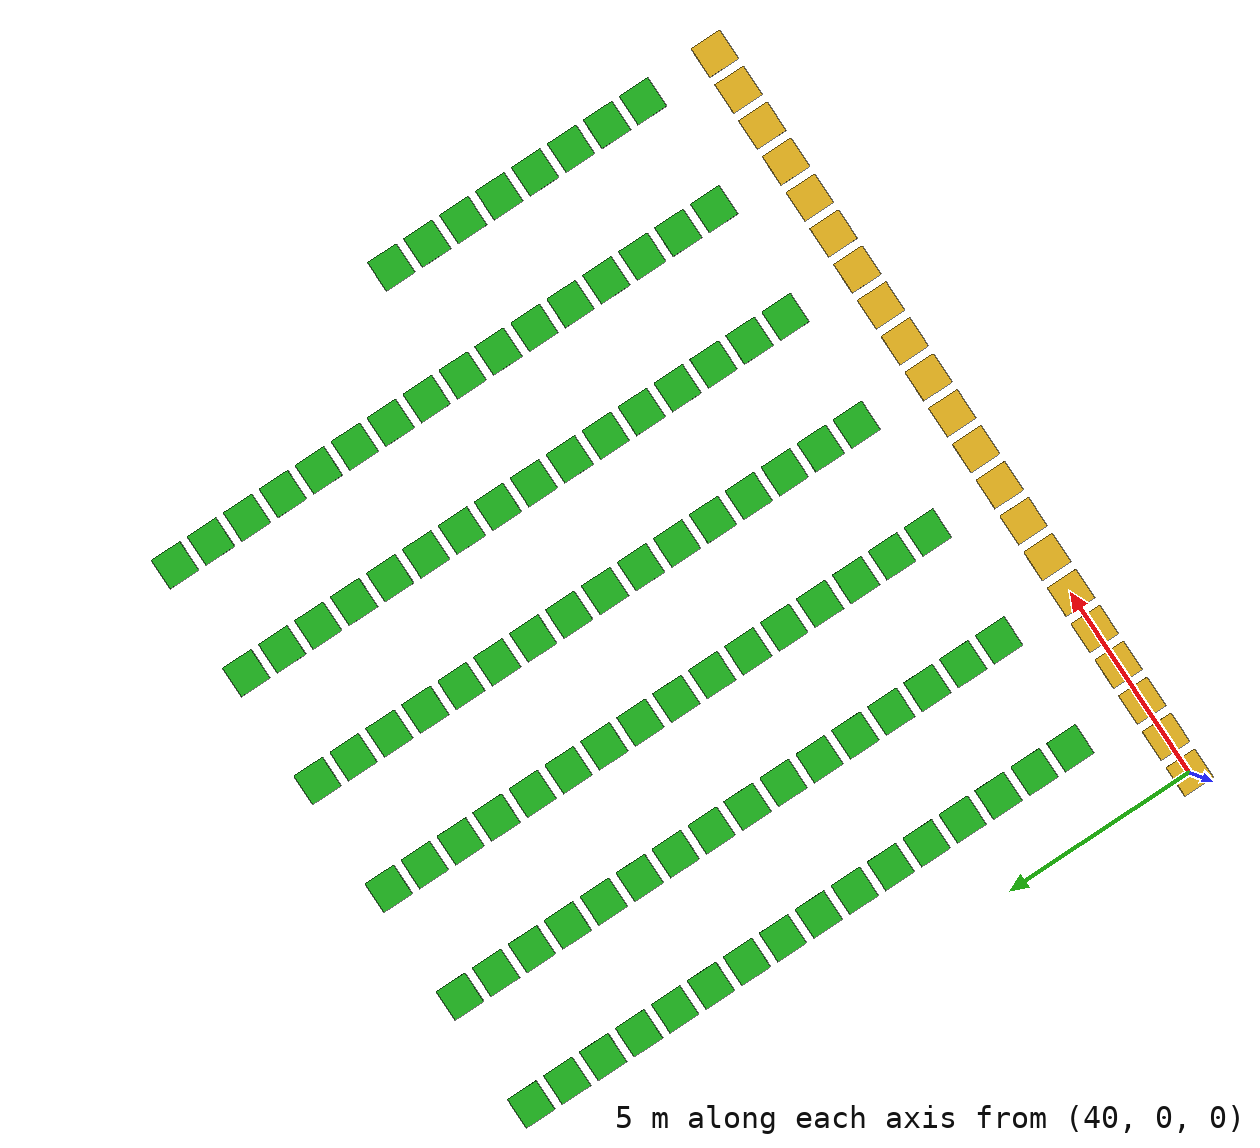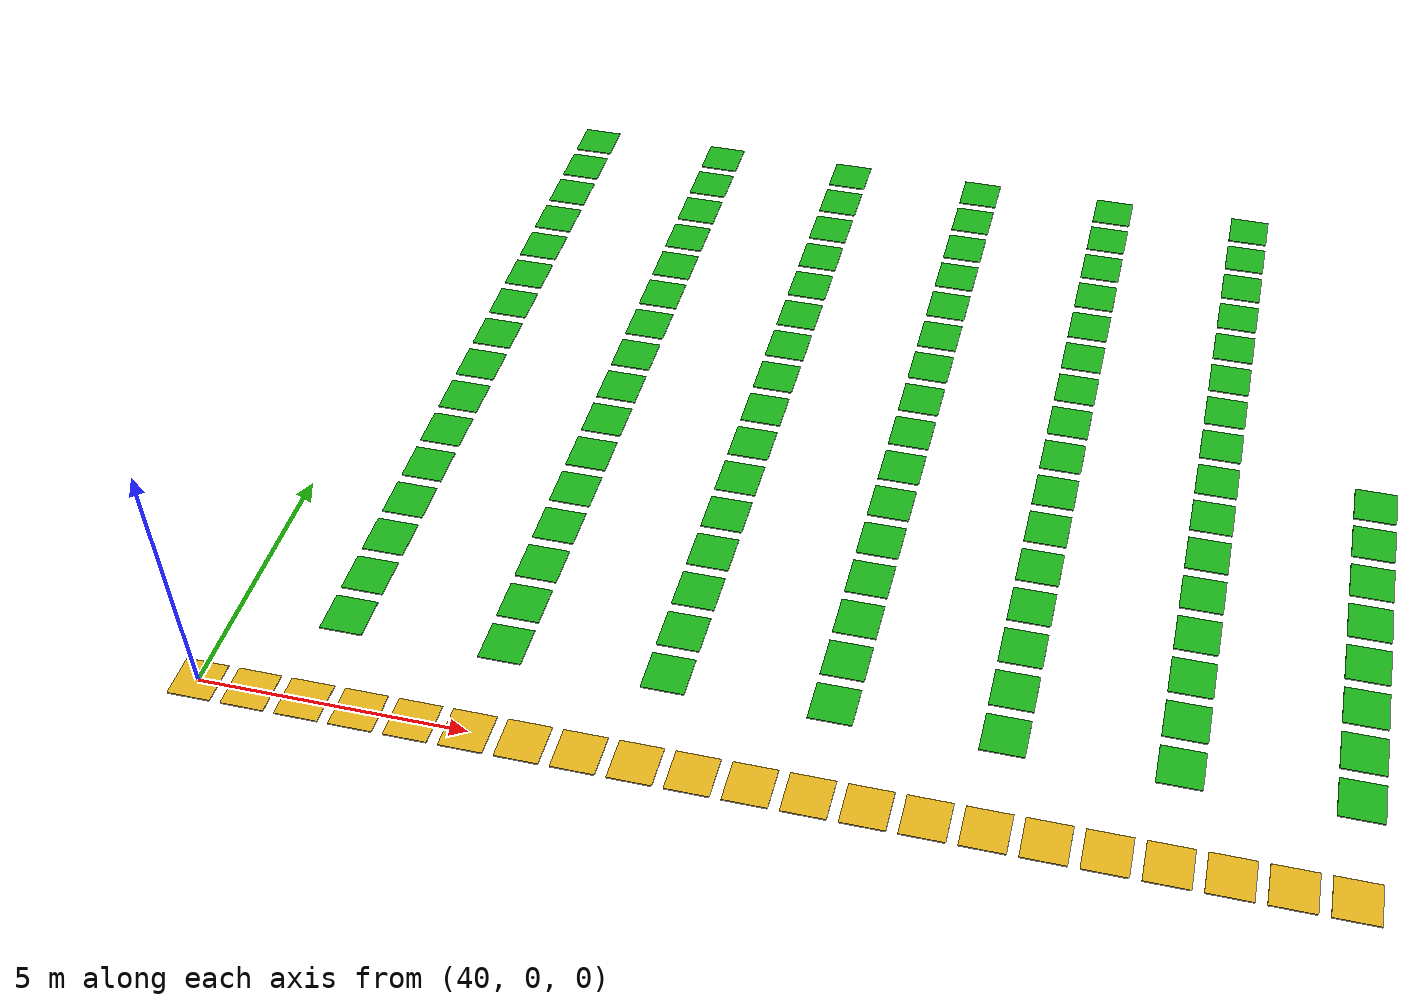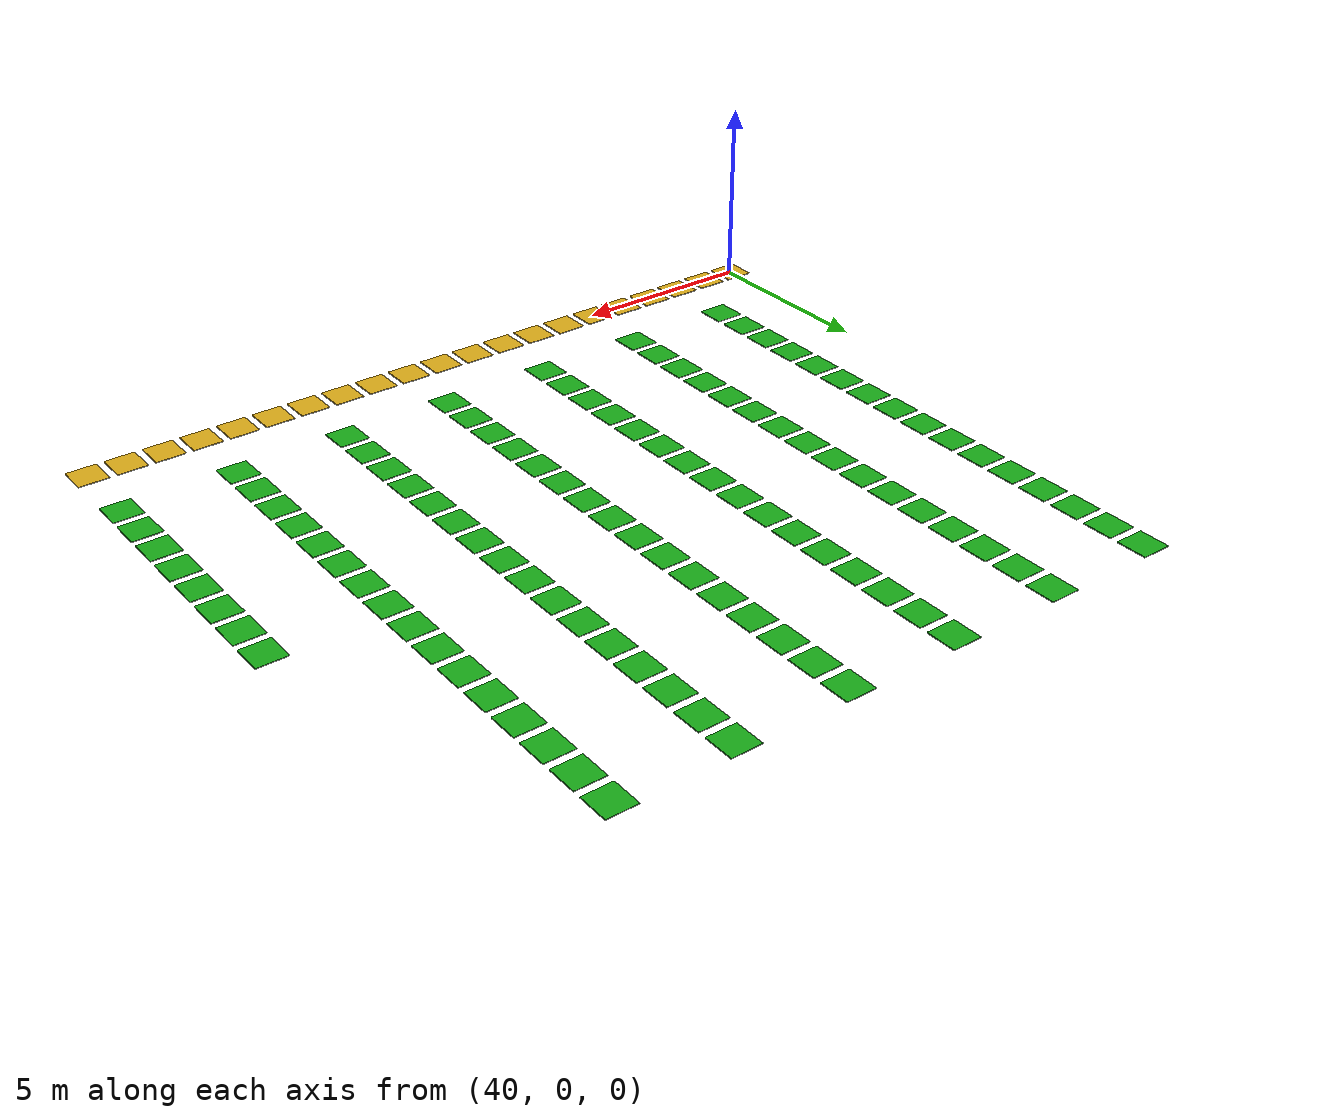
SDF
<sdf version="1.10">
 <world name="my_map">
  <model name="shelf_1864">
   <static>true</static>
   <pose>42.0
        17.0
        0.02
        0 0 0</pose>
   <link name="link">
    <visual name="visual">
     <geometry><box><size>0.8
                0.8
                0.02</size></box></geometry>
     <material><ambient>0.10 0.70 0.10 1</ambient><diffuse>0.10 0.70 0.10 1</diffuse></material>
    </visual>
   </link>
  </model>
  <model name="shelf_1865">
   <static>true</static>
   <pose>45.0
        17.0
        0.02
        0 0 0</pose>
   <link name="link">
    <visual name="visual">
     <geometry><box><size>0.8
                0.8
                0.02</size></box></geometry>
     <material><ambient>0.10 0.70 0.10 1</ambient><diffuse>0.10 0.70 0.10 1</diffuse></material>
    </visual>
   </link>
  </model>
  <model name="shelf_1866">
   <static>true</static>
   <pose>48.0
        17.0
        0.02
        0 0 0</pose>
   <link name="link">
    <visual name="visual">
     <geometry><box><size>0.8
                0.8
                0.02</size></box></geometry>
     <material><ambient>0.10 0.70 0.10 1</ambient><diffuse>0.10 0.70 0.10 1</diffuse></material>
    </visual>
   </link>
  </model>
  <model name="shelf_1867">
   <static>true</static>
   <pose>51.0
        17.0
        0.02
        0 0 0</pose>
   <link name="link">
    <visual name="visual">
     <geometry><box><size>0.8
                0.8
                0.02</size></box></geometry>
     <material><ambient>0.10 0.70 0.10 1</ambient><diffuse>0.10 0.70 0.10 1</diffuse></material>
    </visual>
   </link>
  </model>
  <model name="shelf_1868">
   <static>true</static>
   <pose>54.0
        17.0
        0.02
        0 0 0</pose>
   <link name="link">
    <visual name="visual">
     <geometry><box><size>0.8
                0.8
                0.02</size></box></geometry>
     <material><ambient>0.10 0.70 0.10 1</ambient><diffuse>0.10 0.70 0.10 1</diffuse></material>
    </visual>
   </link>
  </model>
  <model name="shelf_1869">
   <static>true</static>
   <pose>57.0
        17.0
        0.02
        0 0 0</pose>
   <link name="link">
    <visual name="visual">
     <geometry><box><size>0.8
                0.8
                0.02</size></box></geometry>
     <material><ambient>0.10 0.70 0.10 1</ambient><diffuse>0.10 0.70 0.10 1</diffuse></material>
    </visual>
   </link>
  </model>
  <model name="shelf_1889">
   <static>true</static>
   <pose>42.0
        16.0
        0.02
        0 0 0</pose>
   <link name="link">
    <visual name="visual">
     <geometry><box><size>0.8
                0.8
                0.02</size></box></geometry>
     <material><ambient>0.10 0.70 0.10 1</ambient><diffuse>0.10 0.70 0.10 1</diffuse></material>
    </visual>
   </link>
  </model>
  <model name="shelf_1890">
   <static>true</static>
   <pose>45.0
        16.0
        0.02
        0 0 0</pose>
   <link name="link">
    <visual name="visual">
     <geometry><box><size>0.8
                0.8
                0.02</size></box></geometry>
     <material><ambient>0.10 0.70 0.10 1</ambient><diffuse>0.10 0.70 0.10 1</diffuse></material>
    </visual>
   </link>
  </model>
  <model name="shelf_1891">
   <static>true</static>
   <pose>48.0
        16.0
        0.02
        0 0 0</pose>
   <link name="link">
    <visual name="visual">
     <geometry><box><size>0.8
                0.8
                0.02</size></box></geometry>
     <material><ambient>0.10 0.70 0.10 1</ambient><diffuse>0.10 0.70 0.10 1</diffuse></material>
    </visual>
   </link>
  </model>
  <model name="shelf_1892">
   <static>true</static>
   <pose>51.0
        16.0
        0.02
        0 0 0</pose>
   <link name="link">
    <visual name="visual">
     <geometry><box><size>0.8
                0.8
                0.02</size></box></geometry>
     <material><ambient>0.10 0.70 0.10 1</ambient><diffuse>0.10 0.70 0.10 1</diffuse></material>
    </visual>
   </link>
  </model>
  <model name="shelf_1893">
   <static>true</static>
   <pose>54.0
        16.0
        0.02
        0 0 0</pose>
   <link name="link">
    <visual name="visual">
     <geometry><box><size>0.8
                0.8
                0.02</size></box></geometry>
     <material><ambient>0.10 0.70 0.10 1</ambient><diffuse>0.10 0.70 0.10 1</diffuse></material>
    </visual>
   </link>
  </model>
  <model name="shelf_1894">
   <static>true</static>
   <pose>57.0
        16.0
        0.02
        0 0 0</pose>
   <link name="link">
    <visual name="visual">
     <geometry><box><size>0.8
                0.8
                0.02</size></box></geometry>
     <material><ambient>0.10 0.70 0.10 1</ambient><diffuse>0.10 0.70 0.10 1</diffuse></material>
    </visual>
   </link>
  </model>
  <model name="shelf_1914">
   <static>true</static>
   <pose>42.0
        15.0
        0.02
        0 0 0</pose>
   <link name="link">
    <visual name="visual">
     <geometry><box><size>0.8
                0.8
                0.02</size></box></geometry>
     <material><ambient>0.10 0.70 0.10 1</ambient><diffuse>0.10 0.70 0.10 1</diffuse></material>
    </visual>
   </link>
  </model>
  <model name="shelf_1915">
   <static>true</static>
   <pose>45.0
        15.0
        0.02
        0 0 0</pose>
   <link name="link">
    <visual name="visual">
     <geometry><box><size>0.8
                0.8
                0.02</size></box></geometry>
     <material><ambient>0.10 0.70 0.10 1</ambient><diffuse>0.10 0.70 0.10 1</diffuse></material>
    </visual>
   </link>
  </model>
  <model name="shelf_1916">
   <static>true</static>
   <pose>48.0
        15.0
        0.02
        0 0 0</pose>
   <link name="link">
    <visual name="visual">
     <geometry><box><size>0.8
                0.8
                0.02</size></box></geometry>
     <material><ambient>0.10 0.70 0.10 1</ambient><diffuse>0.10 0.70 0.10 1</diffuse></material>
    </visual>
   </link>
  </model>
  <model name="shelf_1917">
   <static>true</static>
   <pose>51.0
        15.0
        0.02
        0 0 0</pose>
   <link name="link">
    <visual name="visual">
     <geometry><box><size>0.8
                0.8
                0.02</size></box></geometry>
     <material><ambient>0.10 0.70 0.10 1</ambient><diffuse>0.10 0.70 0.10 1</diffuse></material>
    </visual>
   </link>
  </model>
  <model name="shelf_1918">
   <static>true</static>
   <pose>54.0
        15.0
        0.02
        0 0 0</pose>
   <link name="link">
    <visual name="visual">
     <geometry><box><size>0.8
                0.8
                0.02</size></box></geometry>
     <material><ambient>0.10 0.70 0.10 1</ambient><diffuse>0.10 0.70 0.10 1</diffuse></material>
    </visual>
   </link>
  </model>
  <model name="shelf_1919">
   <static>true</static>
   <pose>57.0
        15.0
        0.02
        0 0 0</pose>
   <link name="link">
    <visual name="visual">
     <geometry><box><size>0.8
                0.8
                0.02</size></box></geometry>
     <material><ambient>0.10 0.70 0.10 1</ambient><diffuse>0.10 0.70 0.10 1</diffuse></material>
    </visual>
   </link>
  </model>
  <model name="shelf_1939">
   <static>true</static>
   <pose>42.0
        14.0
        0.02
        0 0 0</pose>
   <link name="link">
    <visual name="visual">
     <geometry><box><size>0.8
                0.8
                0.02</size></box></geometry>
     <material><ambient>0.10 0.70 0.10 1</ambient><diffuse>0.10 0.70 0.10 1</diffuse></material>
    </visual>
   </link>
  </model>
  <model name="shelf_1940">
   <static>true</static>
   <pose>45.0
        14.0
        0.02
        0 0 0</pose>
   <link name="link">
    <visual name="visual">
     <geometry><box><size>0.8
                0.8
                0.02</size></box></geometry>
     <material><ambient>0.10 0.70 0.10 1</ambient><diffuse>0.10 0.70 0.10 1</diffuse></material>
    </visual>
   </link>
  </model>
  <model name="shelf_1941">
   <static>true</static>
   <pose>48.0
        14.0
        0.02
        0 0 0</pose>
   <link name="link">
    <visual name="visual">
     <geometry><box><size>0.8
                0.8
                0.02</size></box></geometry>
     <material><ambient>0.10 0.70 0.10 1</ambient><diffuse>0.10 0.70 0.10 1</diffuse></material>
    </visual>
   </link>
  </model>
  <model name="shelf_1942">
   <static>true</static>
   <pose>51.0
        14.0
        0.02
        0 0 0</pose>
   <link name="link">
    <visual name="visual">
     <geometry><box><size>0.8
                0.8
                0.02</size></box></geometry>
     <material><ambient>0.10 0.70 0.10 1</ambient><diffuse>0.10 0.70 0.10 1</diffuse></material>
    </visual>
   </link>
  </model>
  <model name="shelf_1943">
   <static>true</static>
   <pose>54.0
        14.0
        0.02
        0 0 0</pose>
   <link name="link">
    <visual name="visual">
     <geometry><box><size>0.8
                0.8
                0.02</size></box></geometry>
     <material><ambient>0.10 0.70 0.10 1</ambient><diffuse>0.10 0.70 0.10 1</diffuse></material>
    </visual>
   </link>
  </model>
  <model name="shelf_1944">
   <static>true</static>
   <pose>57.0
        14.0
        0.02
        0 0 0</pose>
   <link name="link">
    <visual name="visual">
     <geometry><box><size>0.8
                0.8
                0.02</size></box></geometry>
     <material><ambient>0.10 0.70 0.10 1</ambient><diffuse>0.10 0.70 0.10 1</diffuse></material>
    </visual>
   </link>
  </model>
  <model name="shelf_1964">
   <static>true</static>
   <pose>42.0
        13.0
        0.02
        0 0 0</pose>
   <link name="link">
    <visual name="visual">
     <geometry><box><size>0.8
                0.8
                0.02</size></box></geometry>
     <material><ambient>0.10 0.70 0.10 1</ambient><diffuse>0.10 0.70 0.10 1</diffuse></material>
    </visual>
   </link>
  </model>
  <model name="shelf_1965">
   <static>true</static>
   <pose>45.0
        13.0
        0.02
        0 0 0</pose>
   <link name="link">
    <visual name="visual">
     <geometry><box><size>0.8
                0.8
                0.02</size></box></geometry>
     <material><ambient>0.10 0.70 0.10 1</ambient><diffuse>0.10 0.70 0.10 1</diffuse></material>
    </visual>
   </link>
  </model>
  <model name="shelf_1966">
   <static>true</static>
   <pose>48.0
        13.0
        0.02
        0 0 0</pose>
   <link name="link">
    <visual name="visual">
     <geometry><box><size>0.8
                0.8
                0.02</size></box></geometry>
     <material><ambient>0.10 0.70 0.10 1</ambient><diffuse>0.10 0.70 0.10 1</diffuse></material>
    </visual>
   </link>
  </model>
  <model name="shelf_1967">
   <static>true</static>
   <pose>51.0
        13.0
        0.02
        0 0 0</pose>
   <link name="link">
    <visual name="visual">
     <geometry><box><size>0.8
                0.8
                0.02</size></box></geometry>
     <material><ambient>0.10 0.70 0.10 1</ambient><diffuse>0.10 0.70 0.10 1</diffuse></material>
    </visual>
   </link>
  </model>
  <model name="shelf_1968">
   <static>true</static>
   <pose>54.0
        13.0
        0.02
        0 0 0</pose>
   <link name="link">
    <visual name="visual">
     <geometry><box><size>0.8
                0.8
                0.02</size></box></geometry>
     <material><ambient>0.10 0.70 0.10 1</ambient><diffuse>0.10 0.70 0.10 1</diffuse></material>
    </visual>
   </link>
  </model>
  <model name="shelf_1969">
   <static>true</static>
   <pose>57.0
        13.0
        0.02
        0 0 0</pose>
   <link name="link">
    <visual name="visual">
     <geometry><box><size>0.8
                0.8
                0.02</size></box></geometry>
     <material><ambient>0.10 0.70 0.10 1</ambient><diffuse>0.10 0.70 0.10 1</diffuse></material>
    </visual>
   </link>
  </model>
  <model name="shelf_1989">
   <static>true</static>
   <pose>42.0
        12.0
        0.02
        0 0 0</pose>
   <link name="link">
    <visual name="visual">
     <geometry><box><size>0.8
                0.8
                0.02</size></box></geometry>
     <material><ambient>0.10 0.70 0.10 1</ambient><diffuse>0.10 0.70 0.10 1</diffuse></material>
    </visual>
   </link>
  </model>
  <model name="shelf_1990">
   <static>true</static>
   <pose>45.0
        12.0
        0.02
        0 0 0</pose>
   <link name="link">
    <visual name="visual">
     <geometry><box><size>0.8
                0.8
                0.02</size></box></geometry>
     <material><ambient>0.10 0.70 0.10 1</ambient><diffuse>0.10 0.70 0.10 1</diffuse></material>
    </visual>
   </link>
  </model>
  <model name="shelf_1991">
   <static>true</static>
   <pose>48.0
        12.0
        0.02
        0 0 0</pose>
   <link name="link">
    <visual name="visual">
     <geometry><box><size>0.8
                0.8
                0.02</size></box></geometry>
     <material><ambient>0.10 0.70 0.10 1</ambient><diffuse>0.10 0.70 0.10 1</diffuse></material>
    </visual>
   </link>
  </model>
  <model name="shelf_1992">
   <static>true</static>
   <pose>51.0
        12.0
        0.02
        0 0 0</pose>
   <link name="link">
    <visual name="visual">
     <geometry><box><size>0.8
                0.8
                0.02</size></box></geometry>
     <material><ambient>0.10 0.70 0.10 1</ambient><diffuse>0.10 0.70 0.10 1</diffuse></material>
    </visual>
   </link>
  </model>
  <model name="shelf_1993">
   <static>true</static>
   <pose>54.0
        12.0
        0.02
        0 0 0</pose>
   <link name="link">
    <visual name="visual">
     <geometry><box><size>0.8
                0.8
                0.02</size></box></geometry>
     <material><ambient>0.10 0.70 0.10 1</ambient><diffuse>0.10 0.70 0.10 1</diffuse></material>
    </visual>
   </link>
  </model>
  <model name="shelf_1994">
   <static>true</static>
   <pose>57.0
        12.0
        0.02
        0 0 0</pose>
   <link name="link">
    <visual name="visual">
     <geometry><box><size>0.8
                0.8
                0.02</size></box></geometry>
     <material><ambient>0.10 0.70 0.10 1</ambient><diffuse>0.10 0.70 0.10 1</diffuse></material>
    </visual>
   </link>
  </model>
  <model name="shelf_2014">
   <static>true</static>
   <pose>42.0
        11.0
        0.02
        0 0 0</pose>
   <link name="link">
    <visual name="visual">
     <geometry><box><size>0.8
                0.8
                0.02</size></box></geometry>
     <material><ambient>0.10 0.70 0.10 1</ambient><diffuse>0.10 0.70 0.10 1</diffuse></material>
    </visual>
   </link>
  </model>
  <model name="shelf_2015">
   <static>true</static>
   <pose>45.0
        11.0
        0.02
        0 0 0</pose>
   <link name="link">
    <visual name="visual">
     <geometry><box><size>0.8
                0.8
                0.02</size></box></geometry>
     <material><ambient>0.10 0.70 0.10 1</ambient><diffuse>0.10 0.70 0.10 1</diffuse></material>
    </visual>
   </link>
  </model>
  <model name="shelf_2016">
   <static>true</static>
   <pose>48.0
        11.0
        0.02
        0 0 0</pose>
   <link name="link">
    <visual name="visual">
     <geometry><box><size>0.8
                0.8
                0.02</size></box></geometry>
     <material><ambient>0.10 0.70 0.10 1</ambient><diffuse>0.10 0.70 0.10 1</diffuse></material>
    </visual>
   </link>
  </model>
  <model name="shelf_2017">
   <static>true</static>
   <pose>51.0
        11.0
        0.02
        0 0 0</pose>
   <link name="link">
    <visual name="visual">
     <geometry><box><size>0.8
                0.8
                0.02</size></box></geometry>
     <material><ambient>0.10 0.70 0.10 1</ambient><diffuse>0.10 0.70 0.10 1</diffuse></material>
    </visual>
   </link>
  </model>
  <model name="shelf_2018">
   <static>true</static>
   <pose>54.0
        11.0
        0.02
        0 0 0</pose>
   <link name="link">
    <visual name="visual">
     <geometry><box><size>0.8
                0.8
                0.02</size></box></geometry>
     <material><ambient>0.10 0.70 0.10 1</ambient><diffuse>0.10 0.70 0.10 1</diffuse></material>
    </visual>
   </link>
  </model>
  <model name="shelf_2019">
   <static>true</static>
   <pose>57.0
        11.0
        0.02
        0 0 0</pose>
   <link name="link">
    <visual name="visual">
     <geometry><box><size>0.8
                0.8
                0.02</size></box></geometry>
     <material><ambient>0.10 0.70 0.10 1</ambient><diffuse>0.10 0.70 0.10 1</diffuse></material>
    </visual>
   </link>
  </model>
  <model name="shelf_2039">
   <static>true</static>
   <pose>42.0
        10.0
        0.02
        0 0 0</pose>
   <link name="link">
    <visual name="visual">
     <geometry><box><size>0.8
                0.8
                0.02</size></box></geometry>
     <material><ambient>0.10 0.70 0.10 1</ambient><diffuse>0.10 0.70 0.10 1</diffuse></material>
    </visual>
   </link>
  </model>
  <model name="shelf_2040">
   <static>true</static>
   <pose>45.0
        10.0
        0.02
        0 0 0</pose>
   <link name="link">
    <visual name="visual">
     <geometry><box><size>0.8
                0.8
                0.02</size></box></geometry>
     <material><ambient>0.10 0.70 0.10 1</ambient><diffuse>0.10 0.70 0.10 1</diffuse></material>
    </visual>
   </link>
  </model>
  <model name="shelf_2041">
   <static>true</static>
   <pose>48.0
        10.0
        0.02
        0 0 0</pose>
   <link name="link">
    <visual name="visual">
     <geometry><box><size>0.8
                0.8
                0.02</size></box></geometry>
     <material><ambient>0.10 0.70 0.10 1</ambient><diffuse>0.10 0.70 0.10 1</diffuse></material>
    </visual>
   </link>
  </model>
  <model name="shelf_2042">
   <static>true</static>
   <pose>51.0
        10.0
        0.02
        0 0 0</pose>
   <link name="link">
    <visual name="visual">
     <geometry><box><size>0.8
                0.8
                0.02</size></box></geometry>
     <material><ambient>0.10 0.70 0.10 1</ambient><diffuse>0.10 0.70 0.10 1</diffuse></material>
    </visual>
   </link>
  </model>
  <model name="shelf_2043">
   <static>true</static>
   <pose>54.0
        10.0
        0.02
        0 0 0</pose>
   <link name="link">
    <visual name="visual">
     <geometry><box><size>0.8
                0.8
                0.02</size></box></geometry>
     <material><ambient>0.10 0.70 0.10 1</ambient><diffuse>0.10 0.70 0.10 1</diffuse></material>
    </visual>
   </link>
  </model>
  <model name="shelf_2044">
   <static>true</static>
   <pose>57.0
        10.0
        0.02
        0 0 0</pose>
   <link name="link">
    <visual name="visual">
     <geometry><box><size>0.8
                0.8
                0.02</size></box></geometry>
     <material><ambient>0.10 0.70 0.10 1</ambient><diffuse>0.10 0.70 0.10 1</diffuse></material>
    </visual>
   </link>
  </model>
  <model name="shelf_2064">
   <static>true</static>
   <pose>42.0
        9.0
        0.02
        0 0 0</pose>
   <link name="link">
    <visual name="visual">
     <geometry><box><size>0.8
                0.8
                0.02</size></box></geometry>
     <material><ambient>0.10 0.70 0.10 1</ambient><diffuse>0.10 0.70 0.10 1</diffuse></material>
    </visual>
   </link>
  </model>
  <model name="shelf_2065">
   <static>true</static>
   <pose>45.0
        9.0
        0.02
        0 0 0</pose>
   <link name="link">
    <visual name="visual">
     <geometry><box><size>0.8
                0.8
                0.02</size></box></geometry>
     <material><ambient>0.10 0.70 0.10 1</ambient><diffuse>0.10 0.70 0.10 1</diffuse></material>
    </visual>
   </link>
  </model>
  <model name="shelf_2066">
   <static>true</static>
   <pose>48.0
        9.0
        0.02
        0 0 0</pose>
   <link name="link">
    <visual name="visual">
     <geometry><box><size>0.8
                0.8
                0.02</size></box></geometry>
     <material><ambient>0.10 0.70 0.10 1</ambient><diffuse>0.10 0.70 0.10 1</diffuse></material>
    </visual>
   </link>
  </model>
  <model name="shelf_2067">
   <static>true</static>
   <pose>51.0
        9.0
        0.02
        0 0 0</pose>
   <link name="link">
    <visual name="visual">
     <geometry><box><size>0.8
                0.8
                0.02</size></box></geometry>
     <material><ambient>0.10 0.70 0.10 1</ambient><diffuse>0.10 0.70 0.10 1</diffuse></material>
    </visual>
   </link>
  </model>
  <model name="shelf_2068">
   <static>true</static>
   <pose>54.0
        9.0
        0.02
        0 0 0</pose>
   <link name="link">
    <visual name="visual">
     <geometry><box><size>0.8
                0.8
                0.02</size></box></geometry>
     <material><ambient>0.10 0.70 0.10 1</ambient><diffuse>0.10 0.70 0.10 1</diffuse></material>
    </visual>
   </link>
  </model>
  <model name="shelf_2069">
   <static>true</static>
   <pose>57.0
        9.0
        0.02
        0 0 0</pose>
   <link name="link">
    <visual name="visual">
     <geometry><box><size>0.8
                0.8
                0.02</size></box></geometry>
     <material><ambient>0.10 0.70 0.10 1</ambient><diffuse>0.10 0.70 0.10 1</diffuse></material>
    </visual>
   </link>
  </model>
  <model name="shelf_2070">
   <static>true</static>
   <pose>60.0
        9.0
        0.02
        0 0 0</pose>
   <link name="link">
    <visual name="visual">
     <geometry><box><size>0.8
                0.8
                0.02</size></box></geometry>
     <material><ambient>0.10 0.70 0.10 1</ambient><diffuse>0.10 0.70 0.10 1</diffuse></material>
    </visual>
   </link>
  </model>
  <model name="shelf_2089">
   <static>true</static>
   <pose>42.0
        8.0
        0.02
        0 0 0</pose>
   <link name="link">
    <visual name="visual">
     <geometry><box><size>0.8
                0.8
                0.02</size></box></geometry>
     <material><ambient>0.10 0.70 0.10 1</ambient><diffuse>0.10 0.70 0.10 1</diffuse></material>
    </visual>
   </link>
  </model>
  <model name="shelf_2090">
   <static>true</static>
   <pose>45.0
        8.0
        0.02
        0 0 0</pose>
   <link name="link">
    <visual name="visual">
     <geometry><box><size>0.8
                0.8
                0.02</size></box></geometry>
     <material><ambient>0.10 0.70 0.10 1</ambient><diffuse>0.10 0.70 0.10 1</diffuse></material>
    </visual>
   </link>
  </model>
  <model name="shelf_2091">
   <static>true</static>
   <pose>48.0
        8.0
        0.02
        0 0 0</pose>
   <link name="link">
    <visual name="visual">
     <geometry><box><size>0.8
                0.8
                0.02</size></box></geometry>
     <material><ambient>0.10 0.70 0.10 1</ambient><diffuse>0.10 0.70 0.10 1</diffuse></material>
    </visual>
   </link>
  </model>
  <model name="shelf_2092">
   <static>true</static>
   <pose>51.0
        8.0
        0.02
        0 0 0</pose>
   <link name="link">
    <visual name="visual">
     <geometry><box><size>0.8
                0.8
                0.02</size></box></geometry>
     <material><ambient>0.10 0.70 0.10 1</ambient><diffuse>0.10 0.70 0.10 1</diffuse></material>
    </visual>
   </link>
  </model>
  <model name="shelf_2093">
   <static>true</static>
   <pose>54.0
        8.0
        0.02
        0 0 0</pose>
   <link name="link">
    <visual name="visual">
     <geometry><box><size>0.8
                0.8
                0.02</size></box></geometry>
     <material><ambient>0.10 0.70 0.10 1</ambient><diffuse>0.10 0.70 0.10 1</diffuse></material>
    </visual>
   </link>
  </model>
  <model name="shelf_2094">
   <static>true</static>
   <pose>57.0
        8.0
        0.02
        0 0 0</pose>
   <link name="link">
    <visual name="visual">
     <geometry><box><size>0.8
                0.8
                0.02</size></box></geometry>
     <material><ambient>0.10 0.70 0.10 1</ambient><diffuse>0.10 0.70 0.10 1</diffuse></material>
    </visual>
   </link>
  </model>
  <model name="shelf_2095">
   <static>true</static>
   <pose>60.0
        8.0
        0.02
        0 0 0</pose>
   <link name="link">
    <visual name="visual">
     <geometry><box><size>0.8
                0.8
                0.02</size></box></geometry>
     <material><ambient>0.10 0.70 0.10 1</ambient><diffuse>0.10 0.70 0.10 1</diffuse></material>
    </visual>
   </link>
  </model>
  <model name="shelf_2114">
   <static>true</static>
   <pose>42.0
        7.0
        0.02
        0 0 0</pose>
   <link name="link">
    <visual name="visual">
     <geometry><box><size>0.8
                0.8
                0.02</size></box></geometry>
     <material><ambient>0.10 0.70 0.10 1</ambient><diffuse>0.10 0.70 0.10 1</diffuse></material>
    </visual>
   </link>
  </model>
  <model name="shelf_2115">
   <static>true</static>
   <pose>45.0
        7.0
        0.02
        0 0 0</pose>
   <link name="link">
    <visual name="visual">
     <geometry><box><size>0.8
                0.8
                0.02</size></box></geometry>
     <material><ambient>0.10 0.70 0.10 1</ambient><diffuse>0.10 0.70 0.10 1</diffuse></material>
    </visual>
   </link>
  </model>
  <model name="shelf_2116">
   <static>true</static>
   <pose>48.0
        7.0
        0.02
        0 0 0</pose>
   <link name="link">
    <visual name="visual">
     <geometry><box><size>0.8
                0.8
                0.02</size></box></geometry>
     <material><ambient>0.10 0.70 0.10 1</ambient><diffuse>0.10 0.70 0.10 1</diffuse></material>
    </visual>
   </link>
  </model>
  <model name="shelf_2117">
   <static>true</static>
   <pose>51.0
        7.0
        0.02
        0 0 0</pose>
   <link name="link">
    <visual name="visual">
     <geometry><box><size>0.8
                0.8
                0.02</size></box></geometry>
     <material><ambient>0.10 0.70 0.10 1</ambient><diffuse>0.10 0.70 0.10 1</diffuse></material>
    </visual>
   </link>
  </model>
  <model name="shelf_2118">
   <static>true</static>
   <pose>54.0
        7.0
        0.02
        0 0 0</pose>
   <link name="link">
    <visual name="visual">
     <geometry><box><size>0.8
                0.8
                0.02</size></box></geometry>
     <material><ambient>0.10 0.70 0.10 1</ambient><diffuse>0.10 0.70 0.10 1</diffuse></material>
    </visual>
   </link>
  </model>
  <model name="shelf_2119">
   <static>true</static>
   <pose>57.0
        7.0
        0.02
        0 0 0</pose>
   <link name="link">
    <visual name="visual">
     <geometry><box><size>0.8
                0.8
                0.02</size></box></geometry>
     <material><ambient>0.10 0.70 0.10 1</ambient><diffuse>0.10 0.70 0.10 1</diffuse></material>
    </visual>
   </link>
  </model>
  <model name="shelf_2120">
   <static>true</static>
   <pose>60.0
        7.0
        0.02
        0 0 0</pose>
   <link name="link">
    <visual name="visual">
     <geometry><box><size>0.8
                0.8
                0.02</size></box></geometry>
     <material><ambient>0.10 0.70 0.10 1</ambient><diffuse>0.10 0.70 0.10 1</diffuse></material>
    </visual>
   </link>
  </model>
  <model name="shelf_2139">
   <static>true</static>
   <pose>42.0
        6.0
        0.02
        0 0 0</pose>
   <link name="link">
    <visual name="visual">
     <geometry><box><size>0.8
                0.8
                0.02</size></box></geometry>
     <material><ambient>0.10 0.70 0.10 1</ambient><diffuse>0.10 0.70 0.10 1</diffuse></material>
    </visual>
   </link>
  </model>
  <model name="shelf_2140">
   <static>true</static>
   <pose>45.0
        6.0
        0.02
        0 0 0</pose>
   <link name="link">
    <visual name="visual">
     <geometry><box><size>0.8
                0.8
                0.02</size></box></geometry>
     <material><ambient>0.10 0.70 0.10 1</ambient><diffuse>0.10 0.70 0.10 1</diffuse></material>
    </visual>
   </link>
  </model>
  <model name="shelf_2141">
   <static>true</static>
   <pose>48.0
        6.0
        0.02
        0 0 0</pose>
   <link name="link">
    <visual name="visual">
     <geometry><box><size>0.8
                0.8
                0.02</size></box></geometry>
     <material><ambient>0.10 0.70 0.10 1</ambient><diffuse>0.10 0.70 0.10 1</diffuse></material>
    </visual>
   </link>
  </model>
  <model name="shelf_2142">
   <static>true</static>
   <pose>51.0
        6.0
        0.02
        0 0 0</pose>
   <link name="link">
    <visual name="visual">
     <geometry><box><size>0.8
                0.8
                0.02</size></box></geometry>
     <material><ambient>0.10 0.70 0.10 1</ambient><diffuse>0.10 0.70 0.10 1</diffuse></material>
    </visual>
   </link>
  </model>
  <model name="shelf_2143">
   <static>true</static>
   <pose>54.0
        6.0
        0.02
        0 0 0</pose>
   <link name="link">
    <visual name="visual">
     <geometry><box><size>0.8
                0.8
                0.02</size></box></geometry>
     <material><ambient>0.10 0.70 0.10 1</ambient><diffuse>0.10 0.70 0.10 1</diffuse></material>
    </visual>
   </link>
  </model>
  <model name="shelf_2144">
   <static>true</static>
   <pose>57.0
        6.0
        0.02
        0 0 0</pose>
   <link name="link">
    <visual name="visual">
     <geometry><box><size>0.8
                0.8
                0.02</size></box></geometry>
     <material><ambient>0.10 0.70 0.10 1</ambient><diffuse>0.10 0.70 0.10 1</diffuse></material>
    </visual>
   </link>
  </model>
  <model name="shelf_2145">
   <static>true</static>
   <pose>60.0
        6.0
        0.02
        0 0 0</pose>
   <link name="link">
    <visual name="visual">
     <geometry><box><size>0.8
                0.8
                0.02</size></box></geometry>
     <material><ambient>0.10 0.70 0.10 1</ambient><diffuse>0.10 0.70 0.10 1</diffuse></material>
    </visual>
   </link>
  </model>
  <model name="shelf_2164">
   <static>true</static>
   <pose>42.0
        5.0
        0.02
        0 0 0</pose>
   <link name="link">
    <visual name="visual">
     <geometry><box><size>0.8
                0.8
                0.02</size></box></geometry>
     <material><ambient>0.10 0.70 0.10 1</ambient><diffuse>0.10 0.70 0.10 1</diffuse></material>
    </visual>
   </link>
  </model>
  <model name="shelf_2165">
   <static>true</static>
   <pose>45.0
        5.0
        0.02
        0 0 0</pose>
   <link name="link">
    <visual name="visual">
     <geometry><box><size>0.8
                0.8
                0.02</size></box></geometry>
     <material><ambient>0.10 0.70 0.10 1</ambient><diffuse>0.10 0.70 0.10 1</diffuse></material>
    </visual>
   </link>
  </model>
  <model name="shelf_2166">
   <static>true</static>
   <pose>48.0
        5.0
        0.02
        0 0 0</pose>
   <link name="link">
    <visual name="visual">
     <geometry><box><size>0.8
                0.8
                0.02</size></box></geometry>
     <material><ambient>0.10 0.70 0.10 1</ambient><diffuse>0.10 0.70 0.10 1</diffuse></material>
    </visual>
   </link>
  </model>
  <model name="shelf_2167">
   <static>true</static>
   <pose>51.0
        5.0
        0.02
        0 0 0</pose>
   <link name="link">
    <visual name="visual">
     <geometry><box><size>0.8
                0.8
                0.02</size></box></geometry>
     <material><ambient>0.10 0.70 0.10 1</ambient><diffuse>0.10 0.70 0.10 1</diffuse></material>
    </visual>
   </link>
  </model>
  <model name="shelf_2168">
   <static>true</static>
   <pose>54.0
        5.0
        0.02
        0 0 0</pose>
   <link name="link">
    <visual name="visual">
     <geometry><box><size>0.8
                0.8
                0.02</size></box></geometry>
     <material><ambient>0.10 0.70 0.10 1</ambient><diffuse>0.10 0.70 0.10 1</diffuse></material>
    </visual>
   </link>
  </model>
  <model name="shelf_2169">
   <static>true</static>
   <pose>57.0
        5.0
        0.02
        0 0 0</pose>
   <link name="link">
    <visual name="visual">
     <geometry><box><size>0.8
                0.8
                0.02</size></box></geometry>
     <material><ambient>0.10 0.70 0.10 1</ambient><diffuse>0.10 0.70 0.10 1</diffuse></material>
    </visual>
   </link>
  </model>
  <model name="shelf_2170">
   <static>true</static>
   <pose>60.0
        5.0
        0.02
        0 0 0</pose>
   <link name="link">
    <visual name="visual">
     <geometry><box><size>0.8
                0.8
                0.02</size></box></geometry>
     <material><ambient>0.10 0.70 0.10 1</ambient><diffuse>0.10 0.70 0.10 1</diffuse></material>
    </visual>
   </link>
  </model>
  <model name="shelf_2189">
   <static>true</static>
   <pose>42.0
        4.0
        0.02
        0 0 0</pose>
   <link name="link">
    <visual name="visual">
     <geometry><box><size>0.8
                0.8
                0.02</size></box></geometry>
     <material><ambient>0.10 0.70 0.10 1</ambient><diffuse>0.10 0.70 0.10 1</diffuse></material>
    </visual>
   </link>
  </model>
  <model name="shelf_2190">
   <static>true</static>
   <pose>45.0
        4.0
        0.02
        0 0 0</pose>
   <link name="link">
    <visual name="visual">
     <geometry><box><size>0.8
                0.8
                0.02</size></box></geometry>
     <material><ambient>0.10 0.70 0.10 1</ambient><diffuse>0.10 0.70 0.10 1</diffuse></material>
    </visual>
   </link>
  </model>
  <model name="shelf_2191">
   <static>true</static>
   <pose>48.0
        4.0
        0.02
        0 0 0</pose>
   <link name="link">
    <visual name="visual">
     <geometry><box><size>0.8
                0.8
                0.02</size></box></geometry>
     <material><ambient>0.10 0.70 0.10 1</ambient><diffuse>0.10 0.70 0.10 1</diffuse></material>
    </visual>
   </link>
  </model>
  <model name="shelf_2192">
   <static>true</static>
   <pose>51.0
        4.0
        0.02
        0 0 0</pose>
   <link name="link">
    <visual name="visual">
     <geometry><box><size>0.8
                0.8
                0.02</size></box></geometry>
     <material><ambient>0.10 0.70 0.10 1</ambient><diffuse>0.10 0.70 0.10 1</diffuse></material>
    </visual>
   </link>
  </model>
  <model name="shelf_2193">
   <static>true</static>
   <pose>54.0
        4.0
        0.02
        0 0 0</pose>
   <link name="link">
    <visual name="visual">
     <geometry><box><size>0.8
                0.8
                0.02</size></box></geometry>
     <material><ambient>0.10 0.70 0.10 1</ambient><diffuse>0.10 0.70 0.10 1</diffuse></material>
    </visual>
   </link>
  </model>
  <model name="shelf_2194">
   <static>true</static>
   <pose>57.0
        4.0
        0.02
        0 0 0</pose>
   <link name="link">
    <visual name="visual">
     <geometry><box><size>0.8
                0.8
                0.02</size></box></geometry>
     <material><ambient>0.10 0.70 0.10 1</ambient><diffuse>0.10 0.70 0.10 1</diffuse></material>
    </visual>
   </link>
  </model>
  <model name="shelf_2195">
   <static>true</static>
   <pose>60.0
        4.0
        0.02
        0 0 0</pose>
   <link name="link">
    <visual name="visual">
     <geometry><box><size>0.8
                0.8
                0.02</size></box></geometry>
     <material><ambient>0.10 0.70 0.10 1</ambient><diffuse>0.10 0.70 0.10 1</diffuse></material>
    </visual>
   </link>
  </model>
  <model name="shelf_2214">
   <static>true</static>
   <pose>42.0
        3.0
        0.02
        0 0 0</pose>
   <link name="link">
    <visual name="visual">
     <geometry><box><size>0.8
                0.8
                0.02</size></box></geometry>
     <material><ambient>0.10 0.70 0.10 1</ambient><diffuse>0.10 0.70 0.10 1</diffuse></material>
    </visual>
   </link>
  </model>
  <model name="shelf_2215">
   <static>true</static>
   <pose>45.0
        3.0
        0.02
        0 0 0</pose>
   <link name="link">
    <visual name="visual">
     <geometry><box><size>0.8
                0.8
                0.02</size></box></geometry>
     <material><ambient>0.10 0.70 0.10 1</ambient><diffuse>0.10 0.70 0.10 1</diffuse></material>
    </visual>
   </link>
  </model>
  <model name="shelf_2216">
   <static>true</static>
   <pose>48.0
        3.0
        0.02
        0 0 0</pose>
   <link name="link">
    <visual name="visual">
     <geometry><box><size>0.8
                0.8
                0.02</size></box></geometry>
     <material><ambient>0.10 0.70 0.10 1</ambient><diffuse>0.10 0.70 0.10 1</diffuse></material>
    </visual>
   </link>
  </model>
  <model name="shelf_2217">
   <static>true</static>
   <pose>51.0
        3.0
        0.02
        0 0 0</pose>
   <link name="link">
    <visual name="visual">
     <geometry><box><size>0.8
                0.8
                0.02</size></box></geometry>
     <material><ambient>0.10 0.70 0.10 1</ambient><diffuse>0.10 0.70 0.10 1</diffuse></material>
    </visual>
   </link>
  </model>
  <model name="shelf_2218">
   <static>true</static>
   <pose>54.0
        3.0
        0.02
        0 0 0</pose>
   <link name="link">
    <visual name="visual">
     <geometry><box><size>0.8
                0.8
                0.02</size></box></geometry>
     <material><ambient>0.10 0.70 0.10 1</ambient><diffuse>0.10 0.70 0.10 1</diffuse></material>
    </visual>
   </link>
  </model>
  <model name="shelf_2219">
   <static>true</static>
   <pose>57.0
        3.0
        0.02
        0 0 0</pose>
   <link name="link">
    <visual name="visual">
     <geometry><box><size>0.8
                0.8
                0.02</size></box></geometry>
     <material><ambient>0.10 0.70 0.10 1</ambient><diffuse>0.10 0.70 0.10 1</diffuse></material>
    </visual>
   </link>
  </model>
  <model name="shelf_2220">
   <static>true</static>
   <pose>60.0
        3.0
        0.02
        0 0 0</pose>
   <link name="link">
    <visual name="visual">
     <geometry><box><size>0.8
                0.8
                0.02</size></box></geometry>
     <material><ambient>0.10 0.70 0.10 1</ambient><diffuse>0.10 0.70 0.10 1</diffuse></material>
    </visual>
   </link>
  </model>
  <model name="shelf_2239">
   <static>true</static>
   <pose>42.0
        2.0
        0.02
        0 0 0</pose>
   <link name="link">
    <visual name="visual">
     <geometry><box><size>0.8
                0.8
                0.02</size></box></geometry>
     <material><ambient>0.10 0.70 0.10 1</ambient><diffuse>0.10 0.70 0.10 1</diffuse></material>
    </visual>
   </link>
  </model>
  <model name="shelf_2240">
   <static>true</static>
   <pose>45.0
        2.0
        0.02
        0 0 0</pose>
   <link name="link">
    <visual name="visual">
     <geometry><box><size>0.8
                0.8
                0.02</size></box></geometry>
     <material><ambient>0.10 0.70 0.10 1</ambient><diffuse>0.10 0.70 0.10 1</diffuse></material>
    </visual>
   </link>
  </model>
  <model name="shelf_2241">
   <static>true</static>
   <pose>48.0
        2.0
        0.02
        0 0 0</pose>
   <link name="link">
    <visual name="visual">
     <geometry><box><size>0.8
                0.8
                0.02</size></box></geometry>
     <material><ambient>0.10 0.70 0.10 1</ambient><diffuse>0.10 0.70 0.10 1</diffuse></material>
    </visual>
   </link>
  </model>
  <model name="shelf_2242">
   <static>true</static>
   <pose>51.0
        2.0
        0.02
        0 0 0</pose>
   <link name="link">
    <visual name="visual">
     <geometry><box><size>0.8
                0.8
                0.02</size></box></geometry>
     <material><ambient>0.10 0.70 0.10 1</ambient><diffuse>0.10 0.70 0.10 1</diffuse></material>
    </visual>
   </link>
  </model>
  <model name="shelf_2243">
   <static>true</static>
   <pose>54.0
        2.0
        0.02
        0 0 0</pose>
   <link name="link">
    <visual name="visual">
     <geometry><box><size>0.8
                0.8
                0.02</size></box></geometry>
     <material><ambient>0.10 0.70 0.10 1</ambient><diffuse>0.10 0.70 0.10 1</diffuse></material>
    </visual>
   </link>
  </model>
  <model name="shelf_2244">
   <static>true</static>
   <pose>57.0
        2.0
        0.02
        0 0 0</pose>
   <link name="link">
    <visual name="visual">
     <geometry><box><size>0.8
                0.8
                0.02</size></box></geometry>
     <material><ambient>0.10 0.70 0.10 1</ambient><diffuse>0.10 0.70 0.10 1</diffuse></material>
    </visual>
   </link>
  </model>
  <model name="shelf_2245">
   <static>true</static>
   <pose>60.0
        2.0
        0.02
        0 0 0</pose>
   <link name="link">
    <visual name="visual">
     <geometry><box><size>0.8
                0.8
                0.02</size></box></geometry>
     <material><ambient>0.10 0.70 0.10 1</ambient><diffuse>0.10 0.70 0.10 1</diffuse></material>
    </visual>
   </link>
  </model>
  <model name="dropoff_039">
   <static>true</static>
   <pose>40.0
        0.0
        0.02
        0 0 0</pose>
   <link name="link">
    <visual name="visual">
     <geometry><box><size>0.8
                0.8
                0.02</size></box></geometry>
     <material><ambient>0.90 0.70 0.10 1</ambient><diffuse>0.90 0.70 0.10 1</diffuse></material>
    </visual>
   </link>
  </model>
  <model name="dropoff_040">
   <static>true</static>
   <pose>41.0
        0.0
        0.02
        0 0 0</pose>
   <link name="link">
    <visual name="visual">
     <geometry><box><size>0.8
                0.8
                0.02</size></box></geometry>
     <material><ambient>0.90 0.70 0.10 1</ambient><diffuse>0.90 0.70 0.10 1</diffuse></material>
    </visual>
   </link>
  </model>
  <model name="dropoff_041">
   <static>true</static>
   <pose>42.0
        0.0
        0.02
        0 0 0</pose>
   <link name="link">
    <visual name="visual">
     <geometry><box><size>0.8
                0.8
                0.02</size></box></geometry>
     <material><ambient>0.90 0.70 0.10 1</ambient><diffuse>0.90 0.70 0.10 1</diffuse></material>
    </visual>
   </link>
  </model>
  <model name="dropoff_042">
   <static>true</static>
   <pose>43.0
        0.0
        0.02
        0 0 0</pose>
   <link name="link">
    <visual name="visual">
     <geometry><box><size>0.8
                0.8
                0.02</size></box></geometry>
     <material><ambient>0.90 0.70 0.10 1</ambient><diffuse>0.90 0.70 0.10 1</diffuse></material>
    </visual>
   </link>
  </model>
  <model name="dropoff_043">
   <static>true</static>
   <pose>44.0
        0.0
        0.02
        0 0 0</pose>
   <link name="link">
    <visual name="visual">
     <geometry><box><size>0.8
                0.8
                0.02</size></box></geometry>
     <material><ambient>0.90 0.70 0.10 1</ambient><diffuse>0.90 0.70 0.10 1</diffuse></material>
    </visual>
   </link>
  </model>
  <model name="dropoff_044">
   <static>true</static>
   <pose>45.0
        0.0
        0.02
        0 0 0</pose>
   <link name="link">
    <visual name="visual">
     <geometry><box><size>0.8
                0.8
                0.02</size></box></geometry>
     <material><ambient>0.90 0.70 0.10 1</ambient><diffuse>0.90 0.70 0.10 1</diffuse></material>
    </visual>
   </link>
  </model>
  <model name="dropoff_045">
   <static>true</static>
   <pose>46.0
        0.0
        0.02
        0 0 0</pose>
   <link name="link">
    <visual name="visual">
     <geometry><box><size>0.8
                0.8
                0.02</size></box></geometry>
     <material><ambient>0.90 0.70 0.10 1</ambient><diffuse>0.90 0.70 0.10 1</diffuse></material>
    </visual>
   </link>
  </model>
  <model name="dropoff_046">
   <static>true</static>
   <pose>47.0
        0.0
        0.02
        0 0 0</pose>
   <link name="link">
    <visual name="visual">
     <geometry><box><size>0.8
                0.8
                0.02</size></box></geometry>
     <material><ambient>0.90 0.70 0.10 1</ambient><diffuse>0.90 0.70 0.10 1</diffuse></material>
    </visual>
   </link>
  </model>
  <model name="dropoff_047">
   <static>true</static>
   <pose>48.0
        0.0
        0.02
        0 0 0</pose>
   <link name="link">
    <visual name="visual">
     <geometry><box><size>0.8
                0.8
                0.02</size></box></geometry>
     <material><ambient>0.90 0.70 0.10 1</ambient><diffuse>0.90 0.70 0.10 1</diffuse></material>
    </visual>
   </link>
  </model>
  <model name="dropoff_048">
   <static>true</static>
   <pose>49.0
        0.0
        0.02
        0 0 0</pose>
   <link name="link">
    <visual name="visual">
     <geometry><box><size>0.8
                0.8
                0.02</size></box></geometry>
     <material><ambient>0.90 0.70 0.10 1</ambient><diffuse>0.90 0.70 0.10 1</diffuse></material>
    </visual>
   </link>
  </model>
  <model name="dropoff_049">
   <static>true</static>
   <pose>50.0
        0.0
        0.02
        0 0 0</pose>
   <link name="link">
    <visual name="visual">
     <geometry><box><size>0.8
                0.8
                0.02</size></box></geometry>
     <material><ambient>0.90 0.70 0.10 1</ambient><diffuse>0.90 0.70 0.10 1</diffuse></material>
    </visual>
   </link>
  </model>
  <model name="dropoff_050">
   <static>true</static>
   <pose>51.0
        0.0
        0.02
        0 0 0</pose>
   <link name="link">
    <visual name="visual">
     <geometry><box><size>0.8
                0.8
                0.02</size></box></geometry>
     <material><ambient>0.90 0.70 0.10 1</ambient><diffuse>0.90 0.70 0.10 1</diffuse></material>
    </visual>
   </link>
  </model>
  <model name="dropoff_051">
   <static>true</static>
   <pose>52.0
        0.0
        0.02
        0 0 0</pose>
   <link name="link">
    <visual name="visual">
     <geometry><box><size>0.8
                0.8
                0.02</size></box></geometry>
     <material><ambient>0.90 0.70 0.10 1</ambient><diffuse>0.90 0.70 0.10 1</diffuse></material>
    </visual>
   </link>
  </model>
  <model name="dropoff_052">
   <static>true</static>
   <pose>53.0
        0.0
        0.02
        0 0 0</pose>
   <link name="link">
    <visual name="visual">
     <geometry><box><size>0.8
                0.8
                0.02</size></box></geometry>
     <material><ambient>0.90 0.70 0.10 1</ambient><diffuse>0.90 0.70 0.10 1</diffuse></material>
    </visual>
   </link>
  </model>
  <model name="dropoff_053">
   <static>true</static>
   <pose>54.0
        0.0
        0.02
        0 0 0</pose>
   <link name="link">
    <visual name="visual">
     <geometry><box><size>0.8
                0.8
                0.02</size></box></geometry>
     <material><ambient>0.90 0.70 0.10 1</ambient><diffuse>0.90 0.70 0.10 1</diffuse></material>
    </visual>
   </link>
  </model>
  <model name="dropoff_054">
   <static>true</static>
   <pose>55.0
        0.0
        0.02
        0 0 0</pose>
   <link name="link">
    <visual name="visual">
     <geometry><box><size>0.8
                0.8
                0.02</size></box></geometry>
     <material><ambient>0.90 0.70 0.10 1</ambient><diffuse>0.90 0.70 0.10 1</diffuse></material>
    </visual>
   </link>
  </model>
  <model name="dropoff_055">
   <static>true</static>
   <pose>56.0
        0.0
        0.02
        0 0 0</pose>
   <link name="link">
    <visual name="visual">
     <geometry><box><size>0.8
                0.8
                0.02</size></box></geometry>
     <material><ambient>0.90 0.70 0.10 1</ambient><diffuse>0.90 0.70 0.10 1</diffuse></material>
    </visual>
   </link>
  </model>
  <model name="dropoff_056">
   <static>true</static>
   <pose>57.0
        0.0
        0.02
        0 0 0</pose>
   <link name="link">
    <visual name="visual">
     <geometry><box><size>0.8
                0.8
                0.02</size></box></geometry>
     <material><ambient>0.90 0.70 0.10 1</ambient><diffuse>0.90 0.70 0.10 1</diffuse></material>
    </visual>
   </link>
  </model>
  <model name="dropoff_057">
   <static>true</static>
   <pose>58.0
        0.0
        0.02
        0 0 0</pose>
   <link name="link">
    <visual name="visual">
     <geometry><box><size>0.8
                0.8
                0.02</size></box></geometry>
     <material><ambient>0.90 0.70 0.10 1</ambient><diffuse>0.90 0.70 0.10 1</diffuse></material>
    </visual>
   </link>
  </model>
  <model name="dropoff_058">
   <static>true</static>
   <pose>59.0
        0.0
        0.02
        0 0 0</pose>
   <link name="link">
    <visual name="visual">
     <geometry><box><size>0.8
                0.8
                0.02</size></box></geometry>
     <material><ambient>0.90 0.70 0.10 1</ambient><diffuse>0.90 0.70 0.10 1</diffuse></material>
    </visual>
   </link>
  </model>
  <model name="dropoff_059">
   <static>true</static>
   <pose>60.0
        0.0
        0.02
        0 0 0</pose>
   <link name="link">
    <visual name="visual">
     <geometry><box><size>0.8
                0.8
                0.02</size></box></geometry>
     <material><ambient>0.90 0.70 0.10 1</ambient><diffuse>0.90 0.70 0.10 1</diffuse></material>
    </visual>
   </link>
  </model>
 </world>
</sdf>
